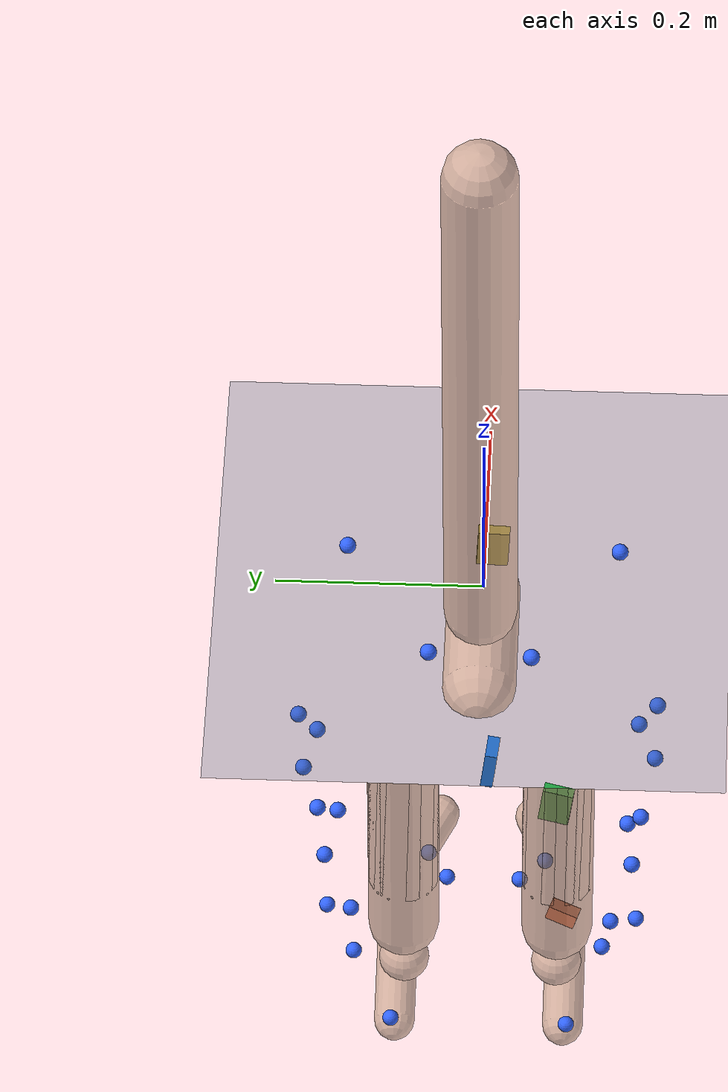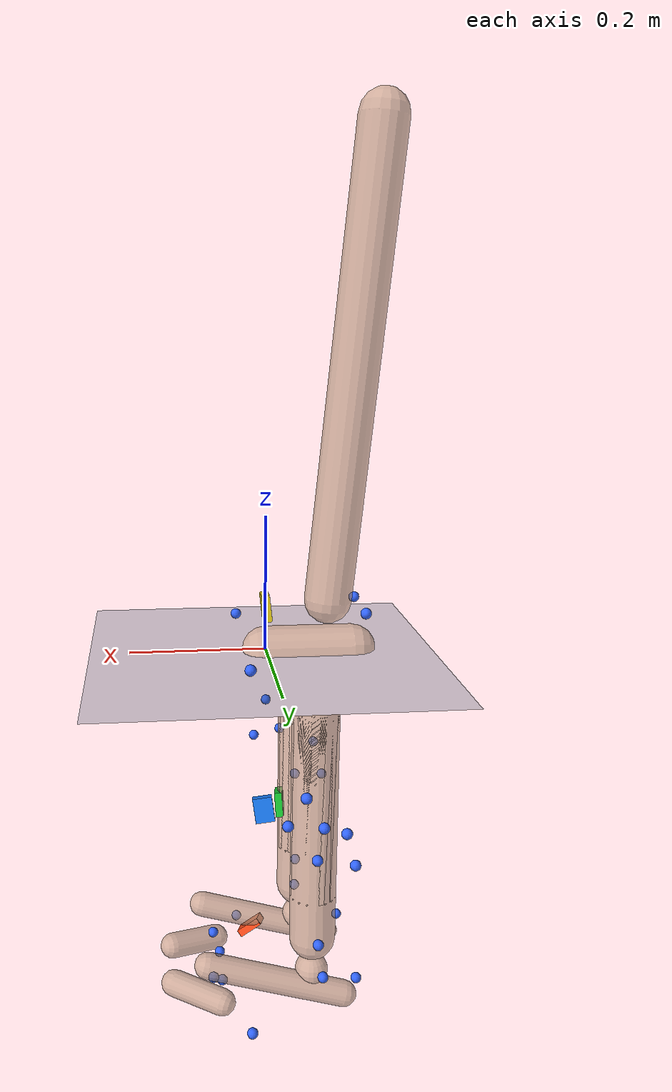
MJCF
<mujoco model="AB19">
  <compiler angle="radian" autolimits="true"/>
  <option timestep="0.005" gravity="0 0 -9.81"><flag contact="disable"/></option>
  <visual><global offwidth="1280" offheight="720"/></visual>
  <default><joint limited="false" damping="0"/><geom contype="0" conaffinity="0"/></default>
  <asset>
    <texture name="grid" type="2d" builtin="checker" rgb1="0.2 0.3 0.4" rgb2="0.3 0.4 0.5" width="512" height="512"/>
    <material name="grid" texture="grid" texrepeat="2 2" texuniform="true"/>
    <material name="skin" rgba="0.8 0.65 0.55 0.7"/>
  </asset>
  <worldbody>
    <light pos="0 0 4" dir="0 0 -1"/>
    <geom name="floor" type="plane" size="0 0 0.05" material="grid"/>
    <body name="pelvis" pos="0 0 0" quat="1 0 0 0">
      <joint name="pelvis_tx" type="slide" axis="1 0 0"/>
      <joint name="pelvis_ty" type="slide" axis="0 0 1"/>
      <joint name="pelvis_tz" type="slide" axis="0 -1 0"/>
      <joint name="pelvis_tilt" type="hinge" axis="0 -1 0"/>
      <joint name="pelvis_list" type="hinge" axis="1 0 0"/>
      <joint name="pelvis_rotation" type="hinge" axis="0 0 1"/>
      <inertial pos="-0.064373962 0 0" mass="10.2542" diaginertia="0.10254237 0.10254237 0.10254237"/>
      <geom type="capsule" fromto="0 0 0 -0.12874792 0 0" size="0.035" material="skin" mass="0"/>
      <site name="m_R_ASIS" pos="0.033279544 -0.12984209 0.018454462" size="0.008" rgba="0.2 0.4 1 1" group="2"/>
      <site name="m_L_ASIS" pos="0.035159373 0.1322283 0.01470486" size="0.008" rgba="0.2 0.4 1 1" group="2"/>
      <site name="m_L_PSIS" pos="-0.13928102 0.047597597 0.065081224" size="0.008" rgba="0.2 0.4 1 1" group="2"/>
      <site name="m_R_PSIS" pos="-0.14102666 -0.04979097 0.063485343" size="0.008" rgba="0.2 0.4 1 1" group="2"/>
      <body name="femur_r" pos="-0.064373962 -0.076028654 -0.060185557" quat="1 0 0 0">
        <joint name="hip_flexion_r" type="hinge" axis="0 -1 0"/>
        <joint name="hip_adduction_r" type="hinge" axis="1 0 0"/>
        <joint name="hip_rotation_r" type="hinge" axis="0 0 1"/>
        <inertial pos="0 0 -0.15154355" mass="8.09873" diaginertia="0.080987311 0.080987311 0.080987311"/>
        <geom type="capsule" fromto="0 0 0 0 0 -0.30308709" size="0.035" material="skin" mass="0"/>
        <site name="m_R_Thigh_Upper" pos="0.044159109 -0.094148765 -0.085306942" size="0.008" rgba="0.2 0.4 1 1" group="2"/>
        <site name="m_R_Thigh_Front" pos="0.066221252 -0.076530917 -0.14097858" size="0.008" rgba="0.2 0.4 1 1" group="2"/>
        <site name="m_R_Thigh_Rear" pos="0.020940276 -0.092986613 -0.13763296" size="0.008" rgba="0.2 0.4 1 1" group="2"/>
        <site name="m_R_Knee_Lat" pos="-0.0028341827 -0.053184587 -0.36401773" size="0.008" rgba="0.2 0.4 1 1" group="2"/>
        <site name="imu_thigh" type="box" size="0.02 0.015 0.006" pos="0.06532473 0.069001077 -0.20347947" quat="0.52632388 0.53873434 -0.511485 0.41368052" rgba="0.1 0.5 1 1" group="1"/>
        <body name="tibia_r" pos="0 0 0" quat="1 0 0 0">
          <joint name="knee_r_translation1" type="slide" axis="1 0 0"/>
          <joint name="knee_r_translation2" type="slide" axis="0 0 1"/>
          <joint name="knee_angle_r" type="hinge" axis="0 -1 0"/>
          <inertial pos="0 0 -0.1878434" mass="3.22812" diaginertia="0.032281211 0.032281211 0.032281211"/>
          <geom type="capsule" fromto="0 0 0 0 0 -0.3756868" size="0.035" material="skin" mass="0"/>
          <site name="m_R_Shank_Upper" pos="-0.035733351 -0.080842375 -0.15935892" size="0.008" rgba="0.2 0.4 1 1" group="2"/>
          <site name="m_R_Shank_Front" pos="-0.002421785 -0.067873807 -0.21085872" size="0.008" rgba="0.2 0.4 1 1" group="2"/>
          <site name="m_R_Shank_Rear" pos="-0.049651474 -0.073248796 -0.21566499" size="0.008" rgba="0.2 0.4 1 1" group="2"/>
          <site name="m_R_Ankle_Lat" pos="-0.00062869923 -0.045222797 -0.40774266" size="0.008" rgba="0.2 0.4 1 1" group="2"/>
          <site name="imu_shank" type="box" size="0.02 0.015 0.006" pos="0.032564588 0.0026846801 -0.22603098" quat="0.67932334 0.098751823 0.72697838 -0.016441264" rgba="0.1 0.8 0.2 1" group="1"/>
          <body name="talus_r" pos="0 0 -0.43263343" quat="1 0 0 0">
            <joint name="ankle_angle_r" type="hinge" axis="-0.10501355 -0.97912632 -0.17402245"/>
            <inertial pos="0 0 0" mass="0.08707" diaginertia="0.00087070023 0.00087070023 0.00087070023"/>
            <geom type="sphere" size="0.025" material="skin" mass="0"/>
            <body name="calcn_r" pos="-0.04906868 -0.0079685041 -0.042206912" quat="1 0 0 0">
              <joint name="subtalar_angle_r" type="hinge" axis="0.78717961 0.12094949 0.60474746"/>
              <inertial pos="0.10451333 0 0.031353999" mass="1.08838" diaginertia="0.010883753 0.010883753 0.010883753"/>
              <geom type="capsule" fromto="0 0 0 0.20902666 0 0.062707998" size="0.02" material="skin" mass="0"/>
              <site name="m_R_Heel" pos="-0.019795018 -0.0038553142 0.027258042" size="0.008" rgba="0.2 0.4 1 1" group="2"/>
              <site name="m_R_Toe_Lat" pos="0.14568201 -0.070168355 -0.0082170482" size="0.008" rgba="0.2 0.4 1 1" group="2"/>
              <site name="m_R_Toe_Med" pos="0.18281093 0.048745272 0.0033205367" size="0.008" rgba="0.2 0.4 1 1" group="2"/>
              <site name="m_R_Toe_Tip" pos="0.192013 0.023268692 0.023091236" size="0.008" rgba="0.2 0.4 1 1" group="2"/>
              <site name="imu_foot" type="box" size="0.02 0.015 0.006" pos="0.12747383 0.0031979328 0.019777065" quat="0.9346262 0.15196067 0.30617902 -0.098164309" rgba="1 0.3 0.1 1" group="1"/>
              <body name="toes_r" pos="0.18686983 -0.001128744 -0.0020902666" quat="1 0 0 0">
                <joint name="mtp_angle_r" type="hinge" axis="-0.5809544 -0.81393611 0"/>
                <inertial pos="0.036161612 0.018289833 0.0062707998" mass="0.188594" diaginertia="0.0018859367 0.0018859367 0.0018859367"/>
                <geom type="capsule" fromto="0 0 0 0.072323224 0.036579666 0.0125416" size="0.02" material="skin" mass="0"/>
              </body>
            </body>
          </body>
        </body>
      </body>
      <body name="femur_l" pos="-0.064373962 0.076028654 -0.060185557" quat="1 0 0 0">
        <joint name="hip_flexion_l" type="hinge" axis="0 -1 0"/>
        <joint name="hip_adduction_l" type="hinge" axis="-1 0 0"/>
        <joint name="hip_rotation_l" type="hinge" axis="0 0 -1"/>
        <inertial pos="0 0 -0.15154355" mass="8.09873" diaginertia="0.080987311 0.080987311 0.080987311"/>
        <geom type="capsule" fromto="0 0 0 0 0 -0.30308709" size="0.035" material="skin" mass="0"/>
        <site name="m_L_Thigh_Upper" pos="0.027652012 0.10247216 -0.094376032" size="0.008" rgba="0.2 0.4 1 1" group="2"/>
        <site name="m_L_Thigh_Front" pos="0.050264706 0.085792778 -0.14391389" size="0.008" rgba="0.2 0.4 1 1" group="2"/>
        <site name="m_L_Thigh_Rear" pos="0.0015499169 0.09700903 -0.14320347" size="0.008" rgba="0.2 0.4 1 1" group="2"/>
        <site name="m_L_Knee_Lat" pos="-0.0010608844 0.052420577 -0.357029" size="0.008" rgba="0.2 0.4 1 1" group="2"/>
        <body name="tibia_l" pos="0 0 0" quat="1 0 0 0">
          <joint name="knee_l_translation1" type="slide" axis="1 0 0"/>
          <joint name="knee_l_translation2" type="slide" axis="0 0 1"/>
          <joint name="knee_angle_l" type="hinge" axis="0 -1 0"/>
          <inertial pos="0 0 -0.1878434" mass="3.22812" diaginertia="0.032281211 0.032281211 0.032281211"/>
          <geom type="capsule" fromto="0 0 0 0 0 -0.3756868" size="0.035" material="skin" mass="0"/>
          <site name="m_L_Shank_Upper" pos="-0.033456271 0.08184309 -0.16185041" size="0.008" rgba="0.2 0.4 1 1" group="2"/>
          <site name="m_L_Shank_Front" pos="0.004588211 0.064262064 -0.21159002" size="0.008" rgba="0.2 0.4 1 1" group="2"/>
          <site name="m_L_Shank_Rear" pos="-0.048451138 0.07473497 -0.21583817" size="0.008" rgba="0.2 0.4 1 1" group="2"/>
          <site name="m_L_Ankle_Lat" pos="-0.0094739581 0.049777133 -0.41401326" size="0.008" rgba="0.2 0.4 1 1" group="2"/>
          <body name="talus_l" pos="0 0 -0.43263343" quat="1 0 0 0">
            <joint name="ankle_angle_l" type="hinge" axis="0.10501355 -0.97912632 0.17402245"/>
            <inertial pos="0 0 0" mass="0.08707" diaginertia="0.00087070023 0.00087070023 0.00087070023"/>
            <geom type="sphere" size="0.025" material="skin" mass="0"/>
            <body name="calcn_l" pos="-0.04906868 0.0079685041 -0.042206912" quat="1 0 0 0">
              <joint name="subtalar_angle_l" type="hinge" axis="-0.78717961 0.12094949 -0.60474746"/>
              <inertial pos="0.10451333 0 0.031353999" mass="1.08838" diaginertia="0.010883753 0.010883753 0.010883753"/>
              <geom type="capsule" fromto="0 0 0 0.20902666 0 0.062707998" size="0.02" material="skin" mass="0"/>
              <site name="m_L_Heel" pos="-0.018870923 0.0027841511 0.028150929" size="0.008" rgba="0.2 0.4 1 1" group="2"/>
              <site name="m_L_Toe_Lat" pos="0.14769191 0.074081155 -0.0027233458" size="0.008" rgba="0.2 0.4 1 1" group="2"/>
              <site name="m_L_Toe_Med" pos="0.18367977 -0.045817921 0.0027748294" size="0.008" rgba="0.2 0.4 1 1" group="2"/>
              <site name="m_L_Toe_Tip" pos="0.19860447 -0.026592206 0.022391172" size="0.008" rgba="0.2 0.4 1 1" group="2"/>
              <body name="toes_l" pos="0.18686983 0.001128744 -0.0020902666" quat="1 0 0 0">
                <joint name="mtp_angle_l" type="hinge" axis="0.5809544 -0.81393611 0"/>
                <inertial pos="0.036161612 -0.018289833 0.0062707998" mass="0.188594" diaginertia="0.0018859367 0.0018859367 0.0018859367"/>
                <geom type="capsule" fromto="0 0 0 0.072323224 -0.036579666 0.0125416" size="0.02" material="skin" mass="0"/>
              </body>
            </body>
          </body>
        </body>
      </body>
      <body name="torso" pos="-0.091689646 0 0.074207608" quat="1 0 0 0">
        <joint name="lumbar_extension" type="hinge" axis="0 -1 0"/>
        <joint name="lumbar_bending" type="hinge" axis="1 0 0"/>
        <joint name="lumbar_rotation" type="hinge" axis="0 0 1"/>
        <inertial pos="-0.030769035 0 0.32820304" mass="29.8098" diaginertia="0.29809816 0.29809816 0.29809816"/>
        <geom type="capsule" fromto="0 0 0 -0.061538071 0 0.65640609" size="0.035" material="skin" mass="0"/>
        <site name="imu_trunk" type="box" size="0.02 0.015 0.006" pos="0.09052641 -0.0088005947 -0.011267784" quat="0.66825847 0.015101102 0.7435254 0.019301772" rgba="0.9 0.8 0.1 1" group="1"/>
      </body>
    </body>
  </worldbody>
  <sensor>
<accelerometer name="imu_foot_acc" site="imu_foot"/>
<gyro name="imu_foot_gyr" site="imu_foot"/>
<accelerometer name="imu_shank_acc" site="imu_shank"/>
<gyro name="imu_shank_gyr" site="imu_shank"/>
<accelerometer name="imu_thigh_acc" site="imu_thigh"/>
<gyro name="imu_thigh_gyr" site="imu_thigh"/>
<accelerometer name="imu_trunk_acc" site="imu_trunk"/>
<gyro name="imu_trunk_gyr" site="imu_trunk"/>
</sensor>
</mujoco>
